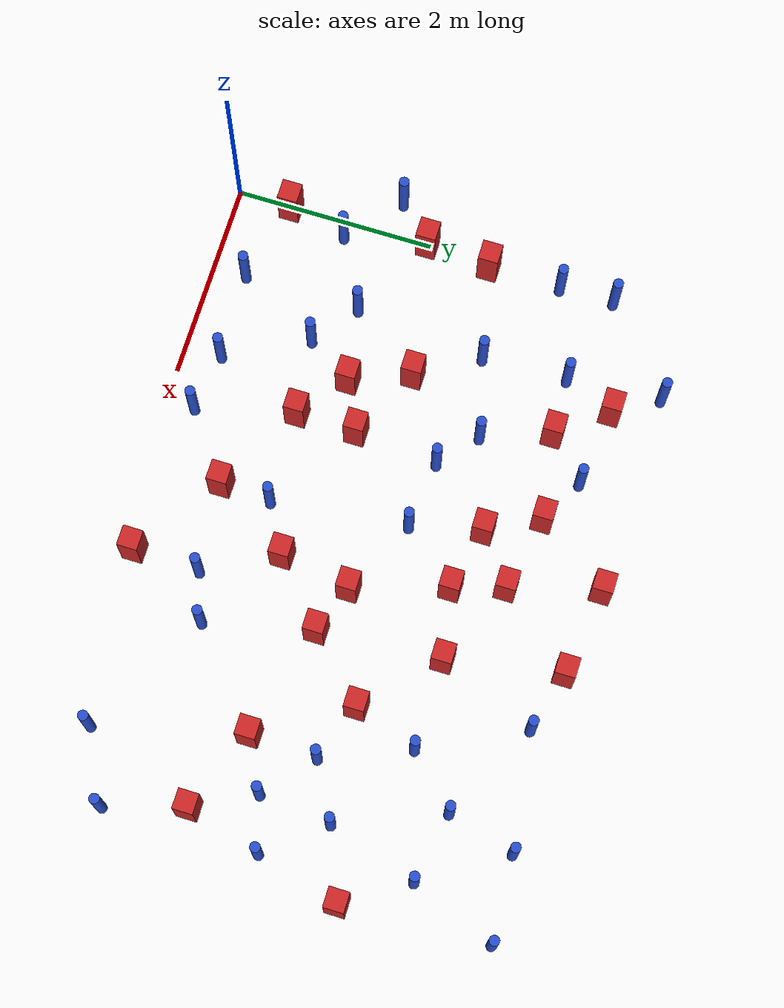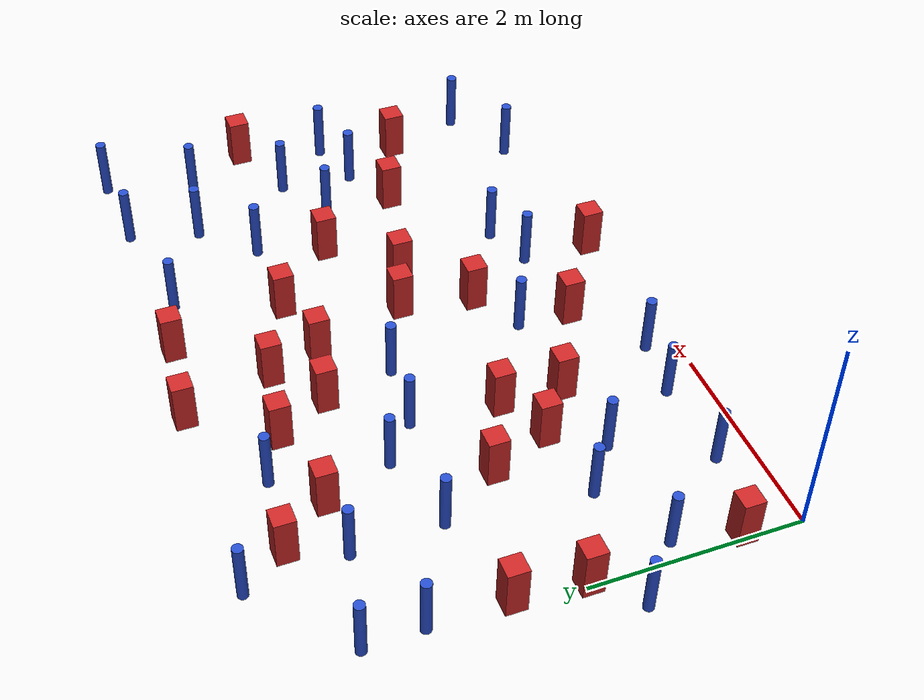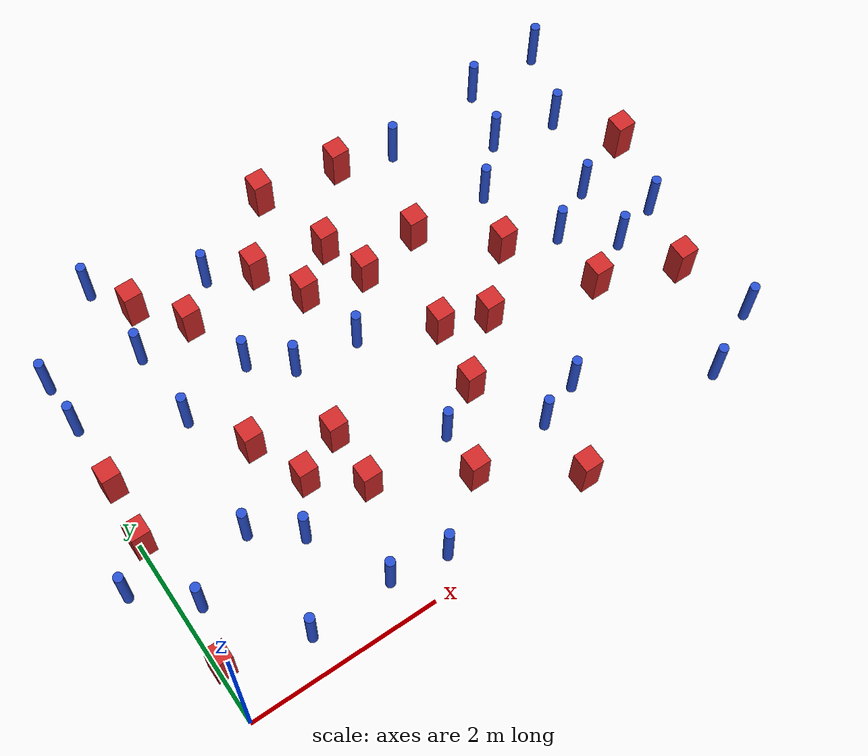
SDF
<sdf version="1.6">
 <model name="dense_3">
  <model name="square_post_obstacle0">
   <static>true</static>
   <pose>0.0291481292182 1.97448072141 1.91545236811e-07 -7.35059704564e-06 1.12565212e-07 2.39332434364e-05</pose>
   <link name="link">
    <pose>0 0 0.25 0 -0 0</pose>
    <inertial>
     <mass>100</mass>
     <inertia>
      <ixx>0.166667</ixx>
      <ixy>0</ixy>
      <ixz>0</ixz>
      <iyy>0.166667</iyy>
      <iyz>0</iyz>
      <izz>0.166667</izz>
     </inertia>
    </inertial>
    <collision name="collision"><geometry><box><size>.2 .2 .5</size></box></geometry></collision>
    <visual name="visual">
     <geometry><box><size>.2 .2 .5</size></box></geometry>
     <material>
      <script><name>Gazebo/Red</name><uri>file://media/materials/scripts/gazebo.material</uri></script>
     </material>
    </visual>
   </link>
  </model>
  <model name="square_post_obstacle3">
   <static>true</static>
   <pose>2.94044296209 4.58378525591 1.91545236811e-07 -7.35059704564e-06 1.12565212e-07 2.39332434364e-05</pose>
   <link name="link">
    <pose>0 0 0.25 0 -0 0</pose>
    <inertial>
     <mass>100</mass>
     <inertia>
      <ixx>0.166667</ixx>
      <ixy>0</ixy>
      <ixz>0</ixz>
      <iyy>0.166667</iyy>
      <iyz>0</iyz>
      <izz>0.166667</izz>
     </inertia>
    </inertial>
    <collision name="collision"><geometry><box><size>.2 .2 .5</size></box></geometry></collision>
    <visual name="visual">
     <geometry><box><size>.2 .2 .5</size></box></geometry>
     <material>
      <script><name>Gazebo/Red</name><uri>file://media/materials/scripts/gazebo.material</uri></script>
     </material>
    </visual>
   </link>
  </model>
  <model name="square_post_obstacle15">
   <static>true</static>
   <pose>5.23388561417 1.81735451772 1.91545236811e-07 -7.35059704564e-06 1.12565212e-07 2.39332434364e-05</pose>
   <link name="link">
    <pose>0 0 0.25 0 -0 0</pose>
    <inertial>
     <mass>100</mass>
     <inertia>
      <ixx>0.166667</ixx>
      <ixy>0</ixy>
      <ixz>0</ixz>
      <iyy>0.166667</iyy>
      <iyz>0</iyz>
      <izz>0.166667</izz>
     </inertia>
    </inertial>
    <collision name="collision"><geometry><box><size>.2 .2 .5</size></box></geometry></collision>
    <visual name="visual">
     <geometry><box><size>.2 .2 .5</size></box></geometry>
     <material>
      <script><name>Gazebo/Red</name><uri>file://media/materials/scripts/gazebo.material</uri></script>
     </material>
    </visual>
   </link>
  </model>
  <model name="square_post_obstacle16">
   <static>true</static>
   <pose>3.6259601431 2.28239656154 1.91545236811e-07 -7.35059704564e-06 1.12565212e-07 2.39332434364e-05</pose>
   <link name="link">
    <pose>0 0 0.25 0 -0 0</pose>
    <inertial>
     <mass>100</mass>
     <inertia>
      <ixx>0.166667</ixx>
      <ixy>0</ixy>
      <ixz>0</ixz>
      <iyy>0.166667</iyy>
      <iyz>0</iyz>
      <izz>0.166667</izz>
     </inertia>
    </inertial>
    <collision name="collision"><geometry><box><size>.2 .2 .5</size></box></geometry></collision>
    <visual name="visual">
     <geometry><box><size>.2 .2 .5</size></box></geometry>
     <material>
      <script><name>Gazebo/Red</name><uri>file://media/materials/scripts/gazebo.material</uri></script>
     </material>
    </visual>
   </link>
  </model>
  <model name="pole_obstacle9">
   <static>true</static>
   <pose>-0.332700703792 1.61640806148 7.38925637345e-09 -8.47170692798e-08 1.24976765025e-08 -1.74513093018e-07</pose>
   <link name="link">
    <pose>0 0 0.3 0 -0 0</pose>
    <inertial>
     <mass>1</mass>
     <inertia><ixx>0.145833</ixx><ixy>0</ixy><ixz>0</ixz><iyy>0.145833</iyy><iyz>0</iyz><izz>0.125</izz></inertia>
    </inertial>
    <collision name="collision">
     <geometry><cylinder><radius>0.05</radius><length>.6</length></cylinder></geometry>
    </collision>
    <visual name="visual">
     <geometry><cylinder><radius>0.05</radius><length>.6</length></cylinder></geometry>
     <material>
      <script><name>Gazebo/Blue</name><uri>file://media/materials/scripts/gazebo.material</uri></script>
     </material>
    </visual>
   </link>
  </model>
  <model name="square_post_obstacle17">
   <static>true</static>
   <pose>1.19263947999 4.18591377882 1.91545236811e-07 -7.35059704564e-06 1.12565212e-07 2.39332434364e-05</pose>
   <link name="link">
    <pose>0 0 0.25 0 -0 0</pose>
    <inertial>
     <mass>100</mass>
     <inertia>
      <ixx>0.166667</ixx>
      <ixy>0</ixy>
      <ixz>0</ixz>
      <iyy>0.166667</iyy>
      <iyz>0</iyz>
      <izz>0.166667</izz>
     </inertia>
    </inertial>
    <collision name="collision"><geometry><box><size>.2 .2 .5</size></box></geometry></collision>
    <visual name="visual">
     <geometry><box><size>.2 .2 .5</size></box></geometry>
     <material>
      <script><name>Gazebo/Red</name><uri>file://media/materials/scripts/gazebo.material</uri></script>
     </material>
    </visual>
   </link>
  </model>
  <model name="pole_obstacle15">
   <static>true</static>
   <pose>1.74778303365 0.38138672804 7.38925637345e-09 -8.47170692799e-08 1.24976765065e-08 -1.74513093017e-07</pose>
   <link name="link">
    <pose>0 0 0.3 0 -0 0</pose>
    <inertial>
     <mass>1</mass>
     <inertia><ixx>0.145833</ixx><ixy>0</ixy><ixz>0</ixz><iyy>0.145833</iyy><iyz>0</iyz><izz>0.125</izz></inertia>
    </inertial>
    <collision name="collision">
     <geometry><cylinder><radius>0.05</radius><length>.6</length></cylinder></geometry>
    </collision>
    <visual name="visual">
     <geometry><cylinder><radius>0.05</radius><length>.6</length></cylinder></geometry>
     <material>
      <script><name>Gazebo/Blue</name><uri>file://media/materials/scripts/gazebo.material</uri></script>
     </material>
    </visual>
   </link>
  </model>
  <model name="square_post_obstacle24">
   <static>true</static>
   <pose>3.81590200415 4.46829043997 1.91545236811e-07 -7.35059704564e-06 1.12565212e-07 2.39332434364e-05</pose>
   <link name="link">
    <pose>0 0 0.25 0 -0 0</pose>
    <inertial>
     <mass>100</mass>
     <inertia>
      <ixx>0.166667</ixx>
      <ixy>0</ixy>
      <ixz>0</ixz>
      <iyy>0.166667</iyy>
      <iyz>0</iyz>
      <izz>0.166667</izz>
     </inertia>
    </inertial>
    <collision name="collision"><geometry><box><size>.2 .2 .5</size></box></geometry></collision>
    <visual name="visual">
     <geometry><box><size>.2 .2 .5</size></box></geometry>
     <material>
      <script><name>Gazebo/Red</name><uri>file://media/materials/scripts/gazebo.material</uri></script>
     </material>
    </visual>
   </link>
  </model>
  <model name="pole_obstacle18">
   <static>true</static>
   <pose>0.888996541848 1.51933908293 7.38925637345e-09 -8.47170692799e-08 1.24976765033e-08 -1.7451309302e-07</pose>
   <link name="link">
    <pose>0 0 0.3 0 -0 0</pose>
    <inertial>
     <mass>1</mass>
     <inertia><ixx>0.145833</ixx><ixy>0</ixy><ixz>0</ixz><iyy>0.145833</iyy><iyz>0</iyz><izz>0.125</izz></inertia>
    </inertial>
    <collision name="collision">
     <geometry><cylinder><radius>0.05</radius><length>.6</length></cylinder></geometry>
    </collision>
    <visual name="visual">
     <geometry><cylinder><radius>0.05</radius><length>.6</length></cylinder></geometry>
     <material>
      <script><name>Gazebo/Blue</name><uri>file://media/materials/scripts/gazebo.material</uri></script>
     </material>
    </visual>
   </link>
  </model>
  <model name="pole_obstacle20">
   <static>true</static>
   <pose>6.43205474753 4.52265151657 7.38925637345e-09 -8.47170692796e-08 1.24976764786e-08 -1.74513093032e-07</pose>
   <link name="link">
    <pose>0 0 0.3 0 -0 0</pose>
    <inertial>
     <mass>1</mass>
     <inertia><ixx>0.145833</ixx><ixy>0</ixy><ixz>0</ixz><iyy>0.145833</iyy><iyz>0</iyz><izz>0.125</izz></inertia>
    </inertial>
    <collision name="collision">
     <geometry><cylinder><radius>0.05</radius><length>.6</length></cylinder></geometry>
    </collision>
    <visual name="visual">
     <geometry><cylinder><radius>0.05</radius><length>.6</length></cylinder></geometry>
     <material>
      <script><name>Gazebo/Blue</name><uri>file://media/materials/scripts/gazebo.material</uri></script>
     </material>
    </visual>
   </link>
  </model>
  <model name="pole_obstacle28">
   <static>true</static>
   <pose>5.59675681962 0.361284577051 7.38925637345e-09 -8.47170692798e-08 1.24976765003e-08 -1.7451309302e-07</pose>
   <link name="link">
    <pose>0 0 0.3 0 -0 0</pose>
    <inertial>
     <mass>1</mass>
     <inertia><ixx>0.145833</ixx><ixy>0</ixy><ixz>0</ixz><iyy>0.145833</iyy><iyz>0</iyz><izz>0.125</izz></inertia>
    </inertial>
    <collision name="collision">
     <geometry><cylinder><radius>0.05</radius><length>.6</length></cylinder></geometry>
    </collision>
    <visual name="visual">
     <geometry><cylinder><radius>0.05</radius><length>.6</length></cylinder></geometry>
     <material>
      <script><name>Gazebo/Blue</name><uri>file://media/materials/scripts/gazebo.material</uri></script>
     </material>
    </visual>
   </link>
  </model>
  <model name="square_post_obstacle39">
   <static>true</static>
   <pose>2.42688040224 3.85473253864 1.91545236811e-07 -7.35059704564e-06 1.12565212e-07 2.39332434364e-05</pose>
   <link name="link">
    <pose>0 0 0.25 0 -0 0</pose>
    <inertial>
     <mass>100</mass>
     <inertia>
      <ixx>0.166667</ixx>
      <ixy>0</ixy>
      <ixz>0</ixz>
      <iyy>0.166667</iyy>
      <iyz>0</iyz>
      <izz>0.166667</izz>
     </inertia>
    </inertial>
    <collision name="collision"><geometry><box><size>.2 .2 .5</size></box></geometry></collision>
    <visual name="visual">
     <geometry><box><size>.2 .2 .5</size></box></geometry>
     <material>
      <script><name>Gazebo/Red</name><uri>file://media/materials/scripts/gazebo.material</uri></script>
     </material>
    </visual>
   </link>
  </model>
  <model name="square_post_obstacle41">
   <static>true</static>
   <pose>3.18091026252 3.70821379578 1.91545236811e-07 -7.35059704564e-06 1.12565212e-07 2.39332434364e-05</pose>
   <link name="link">
    <pose>0 0 0.25 0 -0 0</pose>
    <inertial>
     <mass>100</mass>
     <inertia>
      <ixx>0.166667</ixx>
      <ixy>0</ixy>
      <ixz>0</ixz>
      <iyy>0.166667</iyy>
      <iyz>0</iyz>
      <izz>0.166667</izz>
     </inertia>
    </inertial>
    <collision name="collision"><geometry><box><size>.2 .2 .5</size></box></geometry></collision>
    <visual name="visual">
     <geometry><box><size>.2 .2 .5</size></box></geometry>
     <material>
      <script><name>Gazebo/Red</name><uri>file://media/materials/scripts/gazebo.material</uri></script>
     </material>
    </visual>
   </link>
  </model>
  <model name="pole_obstacle44">
   <static>true</static>
   <pose>0.989764067088 3.68834104193 7.38925637345e-09 -8.47170692799e-08 1.24976765046e-08 -1.74513093018e-07</pose>
   <link name="link">
    <pose>0 0 0.3 0 -0 0</pose>
    <inertial>
     <mass>1</mass>
     <inertia><ixx>0.145833</ixx><ixy>0</ixy><ixz>0</ixz><iyy>0.145833</iyy><iyz>0</iyz><izz>0.125</izz></inertia>
    </inertial>
    <collision name="collision">
     <geometry><cylinder><radius>0.05</radius><length>.6</length></cylinder></geometry>
    </collision>
    <visual name="visual">
     <geometry><cylinder><radius>0.05</radius><length>.6</length></cylinder></geometry>
     <material>
      <script><name>Gazebo/Blue</name><uri>file://media/materials/scripts/gazebo.material</uri></script>
     </material>
    </visual>
   </link>
  </model>
  <model name="square_post_obstacle52">
   <static>true</static>
   <pose>2.11220735017 1.88101218126 1.91545236811e-07 -7.35059704564e-06 1.12565212e-07 2.39332434364e-05</pose>
   <link name="link">
    <pose>0 0 0.25 0 -0 0</pose>
    <inertial>
     <mass>100</mass>
     <inertia>
      <ixx>0.166667</ixx>
      <ixy>0</ixy>
      <ixz>0</ixz>
      <iyy>0.166667</iyy>
      <iyz>0</iyz>
      <izz>0.166667</izz>
     </inertia>
    </inertial>
    <collision name="collision"><geometry><box><size>.2 .2 .5</size></box></geometry></collision>
    <visual name="visual">
     <geometry><box><size>.2 .2 .5</size></box></geometry>
     <material>
      <script><name>Gazebo/Red</name><uri>file://media/materials/scripts/gazebo.material</uri></script>
     </material>
    </visual>
   </link>
  </model>
  <model name="pole_obstacle51">
   <static>true</static>
   <pose>2.19069696406 2.71610709585 7.38925637345e-09 -8.47170692798e-08 1.24976764939e-08 -1.74513093025e-07</pose>
   <link name="link">
    <pose>0 0 0.3 0 -0 0</pose>
    <inertial>
     <mass>1</mass>
     <inertia><ixx>0.145833</ixx><ixy>0</ixy><ixz>0</ixz><iyy>0.145833</iyy><iyz>0</iyz><izz>0.125</izz></inertia>
    </inertial>
    <collision name="collision">
     <geometry><cylinder><radius>0.05</radius><length>.6</length></cylinder></geometry>
    </collision>
    <visual name="visual">
     <geometry><cylinder><radius>0.05</radius><length>.6</length></cylinder></geometry>
     <material>
      <script><name>Gazebo/Blue</name><uri>file://media/materials/scripts/gazebo.material</uri></script>
     </material>
    </visual>
   </link>
  </model>
  <model name="square_post_obstacle54">
   <static>true</static>
   <pose>4.02570083904 3.33463986066 1.91545236811e-07 -7.35059704564e-06 1.12565212e-07 2.39332434364e-05</pose>
   <link name="link">
    <pose>0 0 0.25 0 -0 0</pose>
    <inertial>
     <mass>100</mass>
     <inertia>
      <ixx>0.166667</ixx>
      <ixy>0</ixy>
      <ixz>0</ixz>
      <iyy>0.166667</iyy>
      <iyz>0</iyz>
      <izz>0.166667</izz>
     </inertia>
    </inertial>
    <collision name="collision"><geometry><box><size>.2 .2 .5</size></box></geometry></collision>
    <visual name="visual">
     <geometry><box><size>.2 .2 .5</size></box></geometry>
     <material>
      <script><name>Gazebo/Red</name><uri>file://media/materials/scripts/gazebo.material</uri></script>
     </material>
    </visual>
   </link>
  </model>
  <model name="square_post_obstacle67">
   <static>true</static>
   <pose>3.49952162425 1.57807710977 1.91545236811e-07 -7.35059704564e-06 1.12565212e-07 2.39332434364e-05</pose>
   <link name="link">
    <pose>0 0 0.25 0 -0 0</pose>
    <inertial>
     <mass>100</mass>
     <inertia>
      <ixx>0.166667</ixx>
      <ixy>0</ixy>
      <ixz>0</ixz>
      <iyy>0.166667</iyy>
      <iyz>0</iyz>
      <izz>0.166667</izz>
     </inertia>
    </inertial>
    <collision name="collision"><geometry><box><size>.2 .2 .5</size></box></geometry></collision>
    <visual name="visual">
     <geometry><box><size>.2 .2 .5</size></box></geometry>
     <material>
      <script><name>Gazebo/Red</name><uri>file://media/materials/scripts/gazebo.material</uri></script>
     </material>
    </visual>
   </link>
  </model>
  <model name="pole_obstacle68">
   <static>true</static>
   <pose>5.26768829047 2.48680437826 7.38925637345e-09 -8.47170692798e-08 1.24976764937e-08 -1.74513093023e-07</pose>
   <link name="link">
    <pose>0 0 0.3 0 -0 0</pose>
    <inertial>
     <mass>1</mass>
     <inertia><ixx>0.145833</ixx><ixy>0</ixy><ixz>0</ixz><iyy>0.145833</iyy><iyz>0</iyz><izz>0.125</izz></inertia>
    </inertial>
    <collision name="collision">
     <geometry><cylinder><radius>0.05</radius><length>.6</length></cylinder></geometry>
    </collision>
    <visual name="visual">
     <geometry><cylinder><radius>0.05</radius><length>.6</length></cylinder></geometry>
     <material>
      <script><name>Gazebo/Blue</name><uri>file://media/materials/scripts/gazebo.material</uri></script>
     </material>
    </visual>
   </link>
  </model>
  <model name="square_post_obstacle74">
   <static>true</static>
   <pose>0.0484905375788 0.557291845003 1.91545236811e-07 -7.35059704564e-06 1.12565212e-07 2.39332434364e-05</pose>
   <link name="link">
    <pose>0 0 0.25 0 -0 0</pose>
    <inertial>
     <mass>100</mass>
     <inertia>
      <ixx>0.166667</ixx>
      <ixy>0</ixy>
      <ixz>0</ixz>
      <iyy>0.166667</iyy>
      <iyz>0</iyz>
      <izz>0.166667</izz>
     </inertia>
    </inertial>
    <collision name="collision"><geometry><box><size>.2 .2 .5</size></box></geometry></collision>
    <visual name="visual">
     <geometry><box><size>.2 .2 .5</size></box></geometry>
     <material>
      <script><name>Gazebo/Red</name><uri>file://media/materials/scripts/gazebo.material</uri></script>
     </material>
    </visual>
   </link>
  </model>
  <model name="pole_obstacle71">
   <static>true</static>
   <pose>4.3512231206 1.04355273768 7.38925637345e-09 -8.47170692801e-08 1.24976765139e-08 -1.74513093014e-07</pose>
   <link name="link">
    <pose>0 0 0.3 0 -0 0</pose>
    <inertial>
     <mass>1</mass>
     <inertia><ixx>0.145833</ixx><ixy>0</ixy><ixz>0</ixz><iyy>0.145833</iyy><iyz>0</iyz><izz>0.125</izz></inertia>
    </inertial>
    <collision name="collision">
     <geometry><cylinder><radius>0.05</radius><length>.6</length></cylinder></geometry>
    </collision>
    <visual name="visual">
     <geometry><cylinder><radius>0.05</radius><length>.6</length></cylinder></geometry>
     <material>
      <script><name>Gazebo/Blue</name><uri>file://media/materials/scripts/gazebo.material</uri></script>
     </material>
    </visual>
   </link>
  </model>
  <model name="pole_obstacle74">
   <static>true</static>
   <pose>0.916451409593 4.62303158061 7.38925637345e-09 -8.471706928e-08 1.24976765086e-08 -1.74513093015e-07</pose>
   <link name="link">
    <pose>0 0 0.3 0 -0 0</pose>
    <inertial>
     <mass>1</mass>
     <inertia><ixx>0.145833</ixx><ixy>0</ixy><ixz>0</ixz><iyy>0.145833</iyy><iyz>0</iyz><izz>0.125</izz></inertia>
    </inertial>
    <collision name="collision">
     <geometry><cylinder><radius>0.05</radius><length>.6</length></cylinder></geometry>
    </collision>
    <visual name="visual">
     <geometry><cylinder><radius>0.05</radius><length>.6</length></cylinder></geometry>
     <material>
      <script><name>Gazebo/Blue</name><uri>file://media/materials/scripts/gazebo.material</uri></script>
     </material>
    </visual>
   </link>
  </model>
  <model name="pole_obstacle75">
   <static>true</static>
   <pose>3.02442306669 1.29899592093 7.38925637345e-09 -8.471706928e-08 1.24976765152e-08 -1.74513093012e-07</pose>
   <link name="link">
    <pose>0 0 0.3 0 -0 0</pose>
    <inertial>
     <mass>1</mass>
     <inertia><ixx>0.145833</ixx><ixy>0</ixy><ixz>0</ixz><iyy>0.145833</iyy><iyz>0</iyz><izz>0.125</izz></inertia>
    </inertial>
    <collision name="collision">
     <geometry><cylinder><radius>0.05</radius><length>.6</length></cylinder></geometry>
    </collision>
    <visual name="visual">
     <geometry><cylinder><radius>0.05</radius><length>.6</length></cylinder></geometry>
     <material>
      <script><name>Gazebo/Blue</name><uri>file://media/materials/scripts/gazebo.material</uri></script>
     </material>
    </visual>
   </link>
  </model>
  <model name="pole_obstacle77">
   <static>true</static>
   <pose>4.4259155013 4.30985331413 7.38925637345e-09 -8.47170692796e-08 1.24976764786e-08 -1.74513093032e-07</pose>
   <link name="link">
    <pose>0 0 0.3 0 -0 0</pose>
    <inertial>
     <mass>1</mass>
     <inertia><ixx>0.145833</ixx><ixy>0</ixy><ixz>0</ixz><iyy>0.145833</iyy><iyz>0</iyz><izz>0.125</izz></inertia>
    </inertial>
    <collision name="collision">
     <geometry><cylinder><radius>0.05</radius><length>.6</length></cylinder></geometry>
    </collision>
    <visual name="visual">
     <geometry><cylinder><radius>0.05</radius><length>.6</length></cylinder></geometry>
     <material>
      <script><name>Gazebo/Blue</name><uri>file://media/materials/scripts/gazebo.material</uri></script>
     </material>
    </visual>
   </link>
  </model>
  <model name="pole_obstacle86">
   <static>true</static>
   <pose>6.28628153784 0.711278214851 7.38925637345e-09 -8.47170692799e-08 1.24976765038e-08 -1.74513093018e-07</pose>
   <link name="link">
    <pose>0 0 0.3 0 -0 0</pose>
    <inertial>
     <mass>1</mass>
     <inertia><ixx>0.145833</ixx><ixy>0</ixy><ixz>0</ixz><iyy>0.145833</iyy><iyz>0</iyz><izz>0.125</izz></inertia>
    </inertial>
    <collision name="collision">
     <geometry><cylinder><radius>0.05</radius><length>.6</length></cylinder></geometry>
    </collision>
    <visual name="visual">
     <geometry><cylinder><radius>0.05</radius><length>.6</length></cylinder></geometry>
     <material>
      <script><name>Gazebo/Blue</name><uri>file://media/materials/scripts/gazebo.material</uri></script>
     </material>
    </visual>
   </link>
  </model>
  <model name="pole_obstacle87">
   <static>true</static>
   <pose>1.02011224065 2.83560316325 7.38925637345e-09 -8.471706928e-08 1.2497676505e-08 -1.74513093017e-07</pose>
   <link name="link">
    <pose>0 0 0.3 0 -0 0</pose>
    <inertial>
     <mass>1</mass>
     <inertia><ixx>0.145833</ixx><ixy>0</ixy><ixz>0</ixz><iyy>0.145833</iyy><iyz>0</iyz><izz>0.125</izz></inertia>
    </inertial>
    <collision name="collision">
     <geometry><cylinder><radius>0.05</radius><length>.6</length></cylinder></geometry>
    </collision>
    <visual name="visual">
     <geometry><cylinder><radius>0.05</radius><length>.6</length></cylinder></geometry>
     <material>
      <script><name>Gazebo/Blue</name><uri>file://media/materials/scripts/gazebo.material</uri></script>
     </material>
    </visual>
   </link>
  </model>
  <model name="square_post_obstacle88">
   <static>true</static>
   <pose>4.69300671178 2.69430356194 1.91545236811e-07 -7.35059704564e-06 1.12565212e-07 2.39332434364e-05</pose>
   <link name="link">
    <pose>0 0 0.25 0 -0 0</pose>
    <inertial>
     <mass>100</mass>
     <inertia>
      <ixx>0.166667</ixx>
      <ixy>0</ixy>
      <ixz>0</ixz>
      <iyy>0.166667</iyy>
      <iyz>0</iyz>
      <izz>0.166667</izz>
     </inertia>
    </inertial>
    <collision name="collision"><geometry><box><size>.2 .2 .5</size></box></geometry></collision>
    <visual name="visual">
     <geometry><box><size>.2 .2 .5</size></box></geometry>
     <material>
      <script><name>Gazebo/Red</name><uri>file://media/materials/scripts/gazebo.material</uri></script>
     </material>
    </visual>
   </link>
  </model>
  <model name="pole_obstacle109">
   <static>true</static>
   <pose>2.86967858263 2.64577378153 7.38925637345e-09 -8.47170692798e-08 1.24976764939e-08 -1.74513093025e-07</pose>
   <link name="link">
    <pose>0 0 0.3 0 -0 0</pose>
    <inertial>
     <mass>1</mass>
     <inertia><ixx>0.145833</ixx><ixy>0</ixy><ixz>0</ixz><iyy>0.145833</iyy><iyz>0</iyz><izz>0.125</izz></inertia>
    </inertial>
    <collision name="collision">
     <geometry><cylinder><radius>0.05</radius><length>.6</length></cylinder></geometry>
    </collision>
    <visual name="visual">
     <geometry><cylinder><radius>0.05</radius><length>.6</length></cylinder></geometry>
     <material>
      <script><name>Gazebo/Blue</name><uri>file://media/materials/scripts/gazebo.material</uri></script>
     </material>
    </visual>
   </link>
  </model>
  <model name="square_post_obstacle98">
   <static>true</static>
   <pose>2.99286861903 0.799404648169 1.91545236811e-07 -7.35059704564e-06 1.12565212e-07 2.39332434364e-05</pose>
   <link name="link">
    <pose>0 0 0.25 0 -0 0</pose>
    <inertial>
     <mass>100</mass>
     <inertia>
      <ixx>0.166667</ixx>
      <ixy>0</ixy>
      <ixz>0</ixz>
      <iyy>0.166667</iyy>
      <iyz>0</iyz>
      <izz>0.166667</izz>
     </inertia>
    </inertial>
    <collision name="collision"><geometry><box><size>.2 .2 .5</size></box></geometry></collision>
    <visual name="visual">
     <geometry><box><size>.2 .2 .5</size></box></geometry>
     <material>
      <script><name>Gazebo/Red</name><uri>file://media/materials/scripts/gazebo.material</uri></script>
     </material>
    </visual>
   </link>
  </model>
  <model name="pole_obstacle113">
   <static>true</static>
   <pose>4.92219928807 3.32930231046 7.38925637345e-09 -8.47170692798e-08 1.24976764937e-08 -1.74513093023e-07</pose>
   <link name="link">
    <pose>0 0 0.3 0 -0 0</pose>
    <inertial>
     <mass>1</mass>
     <inertia><ixx>0.145833</ixx><ixy>0</ixy><ixz>0</ixz><iyy>0.145833</iyy><iyz>0</iyz><izz>0.125</izz></inertia>
    </inertial>
    <collision name="collision">
     <geometry><cylinder><radius>0.05</radius><length>.6</length></cylinder></geometry>
    </collision>
    <visual name="visual">
     <geometry><cylinder><radius>0.05</radius><length>.6</length></cylinder></geometry>
     <material>
      <script><name>Gazebo/Blue</name><uri>file://media/materials/scripts/gazebo.material</uri></script>
     </material>
    </visual>
   </link>
  </model>
  <model name="pole_obstacle115">
   <static>true</static>
   <pose>0.874123911076 0.349781422318 7.38925637345e-09 -8.471706928e-08 1.24976765108e-08 -1.74513093015e-07</pose>
   <link name="link">
    <pose>0 0 0.3 0 -0 0</pose>
    <inertial>
     <mass>1</mass>
     <inertia><ixx>0.145833</ixx><ixy>0</ixy><ixz>0</ixz><iyy>0.145833</iyy><iyz>0</iyz><izz>0.125</izz></inertia>
    </inertial>
    <collision name="collision">
     <geometry><cylinder><radius>0.05</radius><length>.6</length></cylinder></geometry>
    </collision>
    <visual name="visual">
     <geometry><cylinder><radius>0.05</radius><length>.6</length></cylinder></geometry>
     <material>
      <script><name>Gazebo/Blue</name><uri>file://media/materials/scripts/gazebo.material</uri></script>
     </material>
    </visual>
   </link>
  </model>
  <model name="pole_obstacle124">
   <static>true</static>
   <pose>5.81735203296 2.79168746584 7.38925637345e-09 -8.47170692798e-08 1.24976764937e-08 -1.74513093023e-07</pose>
   <link name="link">
    <pose>0 0 0.3 0 -0 0</pose>
    <inertial>
     <mass>1</mass>
     <inertia><ixx>0.145833</ixx><ixy>0</ixy><ixz>0</ixz><iyy>0.145833</iyy><iyz>0</iyz><izz>0.125</izz></inertia>
    </inertial>
    <collision name="collision">
     <geometry><cylinder><radius>0.05</radius><length>.6</length></cylinder></geometry>
    </collision>
    <visual name="visual">
     <geometry><cylinder><radius>0.05</radius><length>.6</length></cylinder></geometry>
     <material>
      <script><name>Gazebo/Blue</name><uri>file://media/materials/scripts/gazebo.material</uri></script>
     </material>
    </visual>
   </link>
  </model>
  <model name="square_post_obstacle118">
   <static>true</static>
   <pose>1.38955177496 2.2382070227 1.91545236811e-07 -7.35059704564e-06 1.12565212e-07 2.39332434364e-05</pose>
   <link name="link">
    <pose>0 0 0.25 0 -0 0</pose>
    <inertial>
     <mass>100</mass>
     <inertia>
      <ixx>0.166667</ixx>
      <ixy>0</ixy>
      <ixz>0</ixz>
      <iyy>0.166667</iyy>
      <iyz>0</iyz>
      <izz>0.166667</izz>
     </inertia>
    </inertial>
    <collision name="collision"><geometry><box><size>.2 .2 .5</size></box></geometry></collision>
    <visual name="visual">
     <geometry><box><size>.2 .2 .5</size></box></geometry>
     <material>
      <script><name>Gazebo/Red</name><uri>file://media/materials/scripts/gazebo.material</uri></script>
     </material>
    </visual>
   </link>
  </model>
  <model name="pole_obstacle138">
   <static>true</static>
   <pose>5.74533794981 2.07780654135 7.38925637345e-09 -8.47170692798e-08 1.24976764937e-08 -1.74513093023e-07</pose>
   <link name="link">
    <pose>0 0 0.3 0 -0 0</pose>
    <inertial>
     <mass>1</mass>
     <inertia><ixx>0.145833</ixx><ixy>0</ixy><ixz>0</ixz><iyy>0.145833</iyy><iyz>0</iyz><izz>0.125</izz></inertia>
    </inertial>
    <collision name="collision">
     <geometry><cylinder><radius>0.05</radius><length>.6</length></cylinder></geometry>
    </collision>
    <visual name="visual">
     <geometry><cylinder><radius>0.05</radius><length>.6</length></cylinder></geometry>
     <material>
      <script><name>Gazebo/Blue</name><uri>file://media/materials/scripts/gazebo.material</uri></script>
     </material>
    </visual>
   </link>
  </model>
  <model name="square_post_obstacle128">
   <static>true</static>
   <pose>2.09646005412 1.27626953906 1.91545236811e-07 -7.35059704564e-06 1.12565212e-07 2.39332434364e-05</pose>
   <link name="link">
    <pose>0 0 0.25 0 -0 0</pose>
    <inertial>
     <mass>100</mass>
     <inertia>
      <ixx>0.166667</ixx>
      <ixy>0</ixy>
      <ixz>0</ixz>
      <iyy>0.166667</iyy>
      <iyz>0</iyz>
      <izz>0.166667</izz>
     </inertia>
    </inertial>
    <collision name="collision"><geometry><box><size>.2 .2 .5</size></box></geometry></collision>
    <visual name="visual">
     <geometry><box><size>.2 .2 .5</size></box></geometry>
     <material>
      <script><name>Gazebo/Red</name><uri>file://media/materials/scripts/gazebo.material</uri></script>
     </material>
    </visual>
   </link>
  </model>
  <model name="square_post_obstacle131">
   <static>true</static>
   <pose>3.85552608297 0.204361449174 1.91545236811e-07 -7.35059704564e-06 1.12565212e-07 2.39332434364e-05</pose>
   <link name="link">
    <pose>0 0 0.25 0 -0 0</pose>
    <inertial>
     <mass>100</mass>
     <inertia>
      <ixx>0.166667</ixx>
      <ixy>0</ixy>
      <ixz>0</ixz>
      <iyy>0.166667</iyy>
      <iyz>0</iyz>
      <izz>0.166667</izz>
     </inertia>
    </inertial>
    <collision name="collision"><geometry><box><size>.2 .2 .5</size></box></geometry></collision>
    <visual name="visual">
     <geometry><box><size>.2 .2 .5</size></box></geometry>
     <material>
      <script><name>Gazebo/Red</name><uri>file://media/materials/scripts/gazebo.material</uri></script>
     </material>
    </visual>
   </link>
  </model>
  <model name="square_post_obstacle136">
   <static>true</static>
   <pose>3.33685984966 3.20407677356 1.91545236811e-07 -7.35059704564e-06 1.12565212e-07 2.39332434364e-05</pose>
   <link name="link">
    <pose>0 0 0.25 0 -0 0</pose>
    <inertial>
     <mass>100</mass>
     <inertia>
      <ixx>0.166667</ixx>
      <ixy>0</ixy>
      <ixz>0</ixz>
      <iyy>0.166667</iyy>
      <iyz>0</iyz>
      <izz>0.166667</izz>
     </inertia>
    </inertial>
    <collision name="collision"><geometry><box><size>.2 .2 .5</size></box></geometry></collision>
    <visual name="visual">
     <geometry><box><size>.2 .2 .5</size></box></geometry>
     <material>
      <script><name>Gazebo/Red</name><uri>file://media/materials/scripts/gazebo.material</uri></script>
     </material>
    </visual>
   </link>
  </model>
  <model name="pole_obstacle151">
   <static>true</static>
   <pose>3.88395757574 0.864891867727 7.38925637345e-09 -8.471706928e-08 1.24976765177e-08 -1.74513093012e-07</pose>
   <link name="link">
    <pose>0 0 0.3 0 -0 0</pose>
    <inertial>
     <mass>1</mass>
     <inertia><ixx>0.145833</ixx><ixy>0</ixy><ixz>0</ixz><iyy>0.145833</iyy><iyz>0</iyz><izz>0.125</izz></inertia>
    </inertial>
    <collision name="collision">
     <geometry><cylinder><radius>0.05</radius><length>.6</length></cylinder></geometry>
    </collision>
    <visual name="visual">
     <geometry><cylinder><radius>0.05</radius><length>.6</length></cylinder></geometry>
     <material>
      <script><name>Gazebo/Blue</name><uri>file://media/materials/scripts/gazebo.material</uri></script>
     </material>
    </visual>
   </link>
  </model>
  <model name="pole_obstacle152">
   <static>true</static>
   <pose>5.58430286757 4.47500727149 7.38925637345e-09 -8.47170692796e-08 1.24976764786e-08 -1.74513093032e-07</pose>
   <link name="link">
    <pose>0 0 0.3 0 -0 0</pose>
    <inertial>
     <mass>1</mass>
     <inertia><ixx>0.145833</ixx><ixy>0</ixy><ixz>0</ixz><iyy>0.145833</iyy><iyz>0</iyz><izz>0.125</izz></inertia>
    </inertial>
    <collision name="collision">
     <geometry><cylinder><radius>0.05</radius><length>.6</length></cylinder></geometry>
    </collision>
    <visual name="visual">
     <geometry><cylinder><radius>0.05</radius><length>.6</length></cylinder></geometry>
     <material>
      <script><name>Gazebo/Blue</name><uri>file://media/materials/scripts/gazebo.material</uri></script>
     </material>
    </visual>
   </link>
  </model>
  <model name="square_post_obstacle145">
   <static>true</static>
   <pose>4.1063261196 2.11081799894 1.91545236811e-07 -7.35059704564e-06 1.12565212e-07 2.39332434364e-05</pose>
   <link name="link">
    <pose>0 0 0.25 0 -0 0</pose>
    <inertial>
     <mass>100</mass>
     <inertia>
      <ixx>0.166667</ixx>
      <ixy>0</ixy>
      <ixz>0</ixz>
      <iyy>0.166667</iyy>
      <iyz>0</iyz>
      <izz>0.166667</izz>
     </inertia>
    </inertial>
    <collision name="collision"><geometry><box><size>.2 .2 .5</size></box></geometry></collision>
    <visual name="visual">
     <geometry><box><size>.2 .2 .5</size></box></geometry>
     <material>
      <script><name>Gazebo/Red</name><uri>file://media/materials/scripts/gazebo.material</uri></script>
     </material>
    </visual>
   </link>
  </model>
  <model name="pole_obstacle162">
   <static>true</static>
   <pose>1.97687085489 4.09384812104 7.38925637345e-09 -8.471706928e-08 1.24976765202e-08 -1.7451309301e-07</pose>
   <link name="link">
    <pose>0 0 0.3 0 -0 0</pose>
    <inertial>
     <mass>1</mass>
     <inertia><ixx>0.145833</ixx><ixy>0</ixy><ixz>0</ixz><iyy>0.145833</iyy><iyz>0</iyz><izz>0.125</izz></inertia>
    </inertial>
    <collision name="collision">
     <geometry><cylinder><radius>0.05</radius><length>.6</length></cylinder></geometry>
    </collision>
    <visual name="visual">
     <geometry><cylinder><radius>0.05</radius><length>.6</length></cylinder></geometry>
     <material>
      <script><name>Gazebo/Blue</name><uri>file://media/materials/scripts/gazebo.material</uri></script>
     </material>
    </visual>
   </link>
  </model>
  <model name="pole_obstacle172">
   <static>true</static>
   <pose>6.27324655634 2.23514665158 7.38925637345e-09 -8.47170692798e-08 1.24976764937e-08 -1.74513093023e-07</pose>
   <link name="link">
    <pose>0 0 0.3 0 -0 0</pose>
    <inertial>
     <mass>1</mass>
     <inertia><ixx>0.145833</ixx><ixy>0</ixy><ixz>0</ixz><iyy>0.145833</iyy><iyz>0</iyz><izz>0.125</izz></inertia>
    </inertial>
    <collision name="collision">
     <geometry><cylinder><radius>0.05</radius><length>.6</length></cylinder></geometry>
    </collision>
    <visual name="visual">
     <geometry><cylinder><radius>0.05</radius><length>.6</length></cylinder></geometry>
     <material>
      <script><name>Gazebo/Blue</name><uri>file://media/materials/scripts/gazebo.material</uri></script>
     </material>
    </visual>
   </link>
  </model>
  <model name="pole_obstacle175">
   <static>true</static>
   <pose>0.186460662987 1.15235548084 7.38925637345e-09 -8.471706928e-08 1.24976765082e-08 -1.74513093016e-07</pose>
   <link name="link">
    <pose>0 0 0.3 0 -0 0</pose>
    <inertial>
     <mass>1</mass>
     <inertia><ixx>0.145833</ixx><ixy>0</ixy><ixz>0</ixz><iyy>0.145833</iyy><iyz>0</iyz><izz>0.125</izz></inertia>
    </inertial>
    <collision name="collision">
     <geometry><cylinder><radius>0.05</radius><length>.6</length></cylinder></geometry>
    </collision>
    <visual name="visual">
     <geometry><cylinder><radius>0.05</radius><length>.6</length></cylinder></geometry>
     <material>
      <script><name>Gazebo/Blue</name><uri>file://media/materials/scripts/gazebo.material</uri></script>
     </material>
    </visual>
   </link>
  </model>
  <model name="square_post_obstacle167">
   <static>true</static>
   <pose>6.05327531862 1.49304304395 1.91545236811e-07 -7.35059704564e-06 1.12565212e-07 2.39332434364e-05</pose>
   <link name="link">
    <pose>0 0 0.25 0 -0 0</pose>
    <inertial>
     <mass>100</mass>
     <inertia>
      <ixx>0.166667</ixx>
      <ixy>0</ixy>
      <ixz>0</ixz>
      <iyy>0.166667</iyy>
      <iyz>0</iyz>
      <izz>0.166667</izz>
     </inertia>
    </inertial>
    <collision name="collision"><geometry><box><size>.2 .2 .5</size></box></geometry></collision>
    <visual name="visual">
     <geometry><box><size>.2 .2 .5</size></box></geometry>
     <material>
      <script><name>Gazebo/Red</name><uri>file://media/materials/scripts/gazebo.material</uri></script>
     </material>
    </visual>
   </link>
  </model>
  <model name="square_post_obstacle168">
   <static>true</static>
   <pose>2.70501608202 3.34090830285 1.91545236811e-07 -7.35059704564e-06 1.12565212e-07 2.39332434364e-05</pose>
   <link name="link">
    <pose>0 0 0.25 0 -0 0</pose>
    <inertial>
     <mass>100</mass>
     <inertia>
      <ixx>0.166667</ixx>
      <ixy>0</ixy>
      <ixz>0</ixz>
      <iyy>0.166667</iyy>
      <iyz>0</iyz>
      <izz>0.166667</izz>
     </inertia>
    </inertial>
    <collision name="collision"><geometry><box><size>.2 .2 .5</size></box></geometry></collision>
    <visual name="visual">
     <geometry><box><size>.2 .2 .5</size></box></geometry>
     <material>
      <script><name>Gazebo/Red</name><uri>file://media/materials/scripts/gazebo.material</uri></script>
     </material>
    </visual>
   </link>
  </model>
  <model name="pole_obstacle188">
   <static>true</static>
   <pose>1.8091811792 3.03936202704 7.38925637345e-09 -8.47170692799e-08 1.24976765053e-08 -1.74513093017e-07</pose>
   <link name="link">
    <pose>0 0 0.3 0 -0 0</pose>
    <inertial>
     <mass>1</mass>
     <inertia><ixx>0.145833</ixx><ixy>0</ixy><ixz>0</ixz><iyy>0.145833</iyy><iyz>0</iyz><izz>0.125</izz></inertia>
    </inertial>
    <collision name="collision">
     <geometry><cylinder><radius>0.05</radius><length>.6</length></cylinder></geometry>
    </collision>
    <visual name="visual">
     <geometry><cylinder><radius>0.05</radius><length>.6</length></cylinder></geometry>
     <material>
      <script><name>Gazebo/Blue</name><uri>file://media/materials/scripts/gazebo.material</uri></script>
     </material>
    </visual>
   </link>
  </model>
  <model name="square_post_obstacle174">
   <static>true</static>
   <pose>0.0825601180676 2.62561157115 1.91545236811e-07 -7.35059704564e-06 1.12565212e-07 2.39332434364e-05</pose>
   <link name="link">
    <pose>0 0 0.25 0 -0 0</pose>
    <inertial>
     <mass>100</mass>
     <inertia>
      <ixx>0.166667</ixx>
      <ixy>0</ixy>
      <ixz>0</ixz>
      <iyy>0.166667</iyy>
      <iyz>0</iyz>
      <izz>0.166667</izz>
     </inertia>
    </inertial>
    <collision name="collision"><geometry><box><size>.2 .2 .5</size></box></geometry></collision>
    <visual name="visual">
     <geometry><box><size>.2 .2 .5</size></box></geometry>
     <material>
      <script><name>Gazebo/Red</name><uri>file://media/materials/scripts/gazebo.material</uri></script>
     </material>
    </visual>
   </link>
  </model>
  <model name="square_post_obstacle179">
   <static>true</static>
   <pose>1.62807676742 1.64887088695 1.91545236811e-07 -7.35059704564e-06 1.12565212e-07 2.39332434364e-05</pose>
   <link name="link">
    <pose>0 0 0.25 0 -0 0</pose>
    <inertial>
     <mass>100</mass>
     <inertia>
      <ixx>0.166667</ixx>
      <ixy>0</ixy>
      <ixz>0</ixz>
      <iyy>0.166667</iyy>
      <iyz>0</iyz>
      <izz>0.166667</izz>
     </inertia>
    </inertial>
    <collision name="collision"><geometry><box><size>.2 .2 .5</size></box></geometry></collision>
    <visual name="visual">
     <geometry><box><size>.2 .2 .5</size></box></geometry>
     <material>
      <script><name>Gazebo/Red</name><uri>file://media/materials/scripts/gazebo.material</uri></script>
     </material>
    </visual>
   </link>
  </model>
  <model name="square_post_obstacle180">
   <static>true</static>
   <pose>1.57075333666 3.71105132563 1.91545236811e-07 -7.35059704564e-06 1.12565212e-07 2.39332434364e-05</pose>
   <link name="link">
    <pose>0 0 0.25 0 -0 0</pose>
    <inertial>
     <mass>100</mass>
     <inertia>
      <ixx>0.166667</ixx>
      <ixy>0</ixy>
      <ixz>0</ixz>
      <iyy>0.166667</iyy>
      <iyz>0</iyz>
      <izz>0.166667</izz>
     </inertia>
    </inertial>
    <collision name="collision"><geometry><box><size>.2 .2 .5</size></box></geometry></collision>
    <visual name="visual">
     <geometry><box><size>.2 .2 .5</size></box></geometry>
     <material>
      <script><name>Gazebo/Red</name><uri>file://media/materials/scripts/gazebo.material</uri></script>
     </material>
    </visual>
   </link>
  </model>
  <model name="pole_obstacle189">
   <static>true</static>
   <pose>0.0767521508314 3.90699309603 7.38925637345e-09 -8.47170692799e-08 1.24976765021e-08 -1.74513093019e-07</pose>
   <link name="link">
    <pose>0 0 0.3 0 -0 0</pose>
    <inertial>
     <mass>1</mass>
     <inertia><ixx>0.145833</ixx><ixy>0</ixy><ixz>0</ixz><iyy>0.145833</iyy><iyz>0</iyz><izz>0.125</izz></inertia>
    </inertial>
    <collision name="collision">
     <geometry><cylinder><radius>0.05</radius><length>.6</length></cylinder></geometry>
    </collision>
    <visual name="visual">
     <geometry><cylinder><radius>0.05</radius><length>.6</length></cylinder></geometry>
     <material>
      <script><name>Gazebo/Blue</name><uri>file://media/materials/scripts/gazebo.material</uri></script>
     </material>
    </visual>
   </link>
  </model>
  <model name="pole_obstacle190">
   <static>true</static>
   <pose>1.33383276341 1.18091280402 7.38925637345e-09 -8.471706928e-08 1.24976765079e-08 -1.74513093017e-07</pose>
   <link name="link">
    <pose>0 0 0.3 0 -0 0</pose>
    <inertial>
     <mass>1</mass>
     <inertia><ixx>0.145833</ixx><ixy>0</ixy><ixz>0</ixz><iyy>0.145833</iyy><iyz>0</iyz><izz>0.125</izz></inertia>
    </inertial>
    <collision name="collision">
     <geometry><cylinder><radius>0.05</radius><length>.6</length></cylinder></geometry>
    </collision>
    <visual name="visual">
     <geometry><cylinder><radius>0.05</radius><length>.6</length></cylinder></geometry>
     <material>
      <script><name>Gazebo/Blue</name><uri>file://media/materials/scripts/gazebo.material</uri></script>
     </material>
    </visual>
   </link>
  </model>
  <model name="pole_obstacle195">
   <static>true</static>
   <pose>0.0884338202309 3.36016677782 7.38925637345e-09 -8.47170692799e-08 1.24976765021e-08 -1.74513093019e-07</pose>
   <link name="link">
    <pose>0 0 0.3 0 -0 0</pose>
    <inertial>
     <mass>1</mass>
     <inertia><ixx>0.145833</ixx><ixy>0</ixy><ixz>0</ixz><iyy>0.145833</iyy><iyz>0</iyz><izz>0.125</izz></inertia>
    </inertial>
    <collision name="collision">
     <geometry><cylinder><radius>0.05</radius><length>.6</length></cylinder></geometry>
    </collision>
    <visual name="visual">
     <geometry><cylinder><radius>0.05</radius><length>.6</length></cylinder></geometry>
     <material>
      <script><name>Gazebo/Blue</name><uri>file://media/materials/scripts/gazebo.material</uri></script>
     </material>
    </visual>
   </link>
  </model>
  <model name="square_post_obstacle192">
   <static>true</static>
   <pose>6.49397738244 3.06776795843 1.91545236811e-07 -7.35059704564e-06 1.12565212e-07 2.39332434364e-05</pose>
   <link name="link">
    <pose>0 0 0.25 0 -0 0</pose>
    <inertial>
     <mass>100</mass>
     <inertia>
      <ixx>0.166667</ixx>
      <ixy>0</ixy>
      <ixz>0</ixz>
      <iyy>0.166667</iyy>
      <iyz>0</iyz>
      <izz>0.166667</izz>
     </inertia>
    </inertial>
    <collision name="collision"><geometry><box><size>.2 .2 .5</size></box></geometry></collision>
    <visual name="visual">
     <geometry><box><size>.2 .2 .5</size></box></geometry>
     <material>
      <script><name>Gazebo/Red</name><uri>file://media/materials/scripts/gazebo.material</uri></script>
     </material>
    </visual>
   </link>
  </model>
  <model name="pole_obstacle200">
   <static>true</static>
   <pose>5.39692001395 3.80811824407 7.38925637345e-09 -8.47170692798e-08 1.24976764937e-08 -1.74513093023e-07</pose>
   <link name="link">
    <pose>0 0 0.3 0 -0 0</pose>
    <inertial>
     <mass>1</mass>
     <inertia><ixx>0.145833</ixx><ixy>0</ixy><ixz>0</ixz><iyy>0.145833</iyy><iyz>0</iyz><izz>0.125</izz></inertia>
    </inertial>
    <collision name="collision">
     <geometry><cylinder><radius>0.05</radius><length>.6</length></cylinder></geometry>
    </collision>
    <visual name="visual">
     <geometry><cylinder><radius>0.05</radius><length>.6</length></cylinder></geometry>
     <material>
      <script><name>Gazebo/Blue</name><uri>file://media/materials/scripts/gazebo.material</uri></script>
     </material>
    </visual>
   </link>
  </model>
  <model name="pole_obstacle210">
   <static>true</static>
   <pose>6.09864693087 3.68152856805 7.38925637345e-09 -8.47170692798e-08 1.24976764937e-08 -1.74513093023e-07</pose>
   <link name="link">
    <pose>0 0 0.3 0 -0 0</pose>
    <inertial>
     <mass>1</mass>
     <inertia><ixx>0.145833</ixx><ixy>0</ixy><ixz>0</ixz><iyy>0.145833</iyy><iyz>0</iyz><izz>0.125</izz></inertia>
    </inertial>
    <collision name="collision">
     <geometry><cylinder><radius>0.05</radius><length>.6</length></cylinder></geometry>
    </collision>
    <visual name="visual">
     <geometry><cylinder><radius>0.05</radius><length>.6</length></cylinder></geometry>
     <material>
      <script><name>Gazebo/Blue</name><uri>file://media/materials/scripts/gazebo.material</uri></script>
     </material>
    </visual>
   </link>
  </model>
  <model name="pole_obstacle219">
   <static>true</static>
   <pose>2.3376273375 0.298838738482 7.38925637345e-09 -8.471706928e-08 1.24976765126e-08 -1.74513093015e-07</pose>
   <link name="link">
    <pose>0 0 0.3 0 -0 0</pose>
    <inertial>
     <mass>1</mass>
     <inertia><ixx>0.145833</ixx><ixy>0</ixy><ixz>0</ixz><iyy>0.145833</iyy><iyz>0</iyz><izz>0.125</izz></inertia>
    </inertial>
    <collision name="collision">
     <geometry><cylinder><radius>0.05</radius><length>.6</length></cylinder></geometry>
    </collision>
    <visual name="visual">
     <geometry><cylinder><radius>0.05</radius><length>.6</length></cylinder></geometry>
     <material>
      <script><name>Gazebo/Blue</name><uri>file://media/materials/scripts/gazebo.material</uri></script>
     </material>
    </visual>
   </link>
  </model>
 </model>
</sdf>
